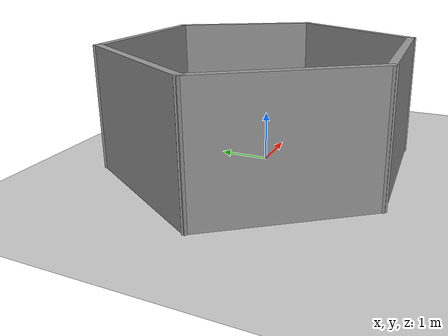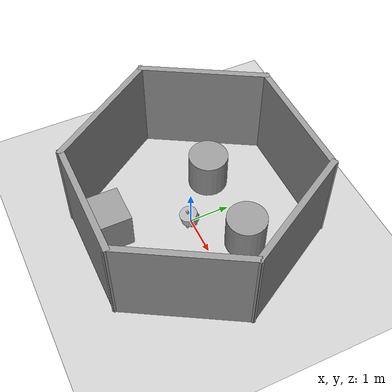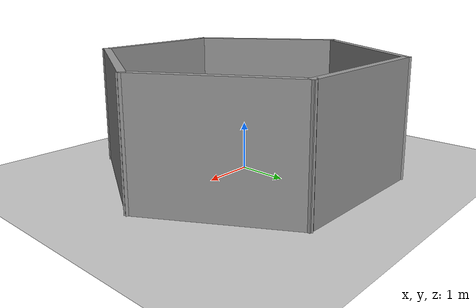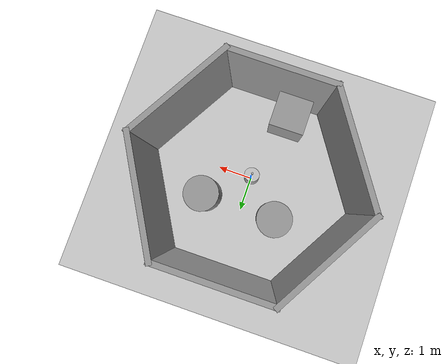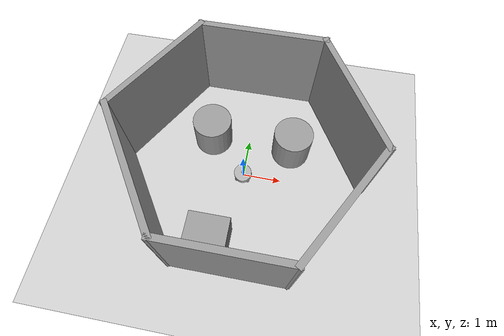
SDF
<sdf version="1.7">
 <world name="default">
  <light name="sun" type="directional">
   <pose>0 0 10 0 -0 0</pose>
   <diffuse>0.8 0.8 0.8 1</diffuse>
   <specular>0.2 0.2 0.2 1</specular>
   <attenuation>
    <range>1000</range>
    <constant>0.9</constant>
    <linear>0.01</linear>
    <quadratic>0.001</quadratic>
   </attenuation>
   <direction>-0.5 0.1 -0.9</direction>
   <spot><inner_angle>0</inner_angle><outer_angle>0</outer_angle><falloff>0</falloff></spot>
  </light>
  <model name="ground_plane">
   <static>1</static>
   <link name="link">
    <collision name="collision">
     <geometry><plane><normal>0 0 1</normal><size>100 100</size></plane></geometry>
     <surface>
      <contact><collide_bitmask>65535</collide_bitmask></contact>
      <friction><ode><mu>100</mu><mu2>50</mu2></ode></friction>
     </surface>
    </collision>
    <visual name="visual">
     <cast_shadows>0</cast_shadows>
     <geometry><plane><normal>0 0 1</normal><size>100 100</size></plane></geometry>
     <material>
      <script><uri>file://media/materials/scripts/gazebo.material</uri><name>Gazebo/Grey</name></script>
     </material>
    </visual>
   </link>
  </model>
  <gravity>0 0 -9.8</gravity>
  <magnetic_field>6e-06 2.3e-05 -4.2e-05</magnetic_field>
  <atmosphere type="adiabatic"/>
  <physics type="ode">
   <max_step_size>0.001</max_step_size>
   <real_time_factor>1</real_time_factor>
   <real_time_update_rate>1000</real_time_update_rate>
  </physics>
  <scene><ambient>0.4 0.4 0.4 1</ambient><background>0.7 0.7 0.7 1</background><shadows>1</shadows></scene>
  <spherical_coordinates>
   <surface_model>EARTH_WGS84</surface_model>
   <latitude_deg>0</latitude_deg>
   <longitude_deg>0</longitude_deg>
   <elevation>0</elevation>
   <heading_deg>0</heading_deg>
  </spherical_coordinates>
  <model name="world1">
   <pose>-0.03173 0.09129 0 0 -0 0</pose>
   <link name="Wall_47">
    <collision name="Wall_47_Collision">
     <geometry><box><size>3.25 0.15 2.5</size></box></geometry>
     <pose>0 0 1.25 0 -0 0</pose>
    </collision>
    <visual name="Wall_47_Visual">
     <pose>0 0 1.25 0 -0 0</pose>
     <geometry><box><size>3.25 0.15 2.5</size></box></geometry>
     <material>
      <script><uri>file://media/materials/scripts/gazebo.material</uri><name>Gazebo/Grey</name></script>
      <ambient>1 1 1 1</ambient>
     </material>
     <meta><layer>0</layer></meta>
    </visual>
    <pose>-2.3242 1.34314 0 0 -0 1.0472</pose>
   </link>
   <link name="Wall_48">
    <collision name="Wall_48_Collision">
     <geometry><box><size>3.25 0.15 2.5</size></box></geometry>
     <pose>0 0 1.25 0 -0 0</pose>
    </collision>
    <visual name="Wall_48_Visual">
     <pose>0 0 1.25 0 -0 0</pose>
     <geometry><box><size>3.25 0.15 2.5</size></box></geometry>
     <material>
      <script><uri>file://media/materials/scripts/gazebo.material</uri><name>Gazebo/Grey</name></script>
      <ambient>1 1 1 1</ambient>
     </material>
     <meta><layer>0</layer></meta>
    </visual>
    <pose>0.000804 2.68548 0 0 -0 0</pose>
   </link>
   <link name="Wall_49">
    <collision name="Wall_49_Collision">
     <geometry><box><size>3.25 0.15 2.5</size></box></geometry>
     <pose>0 0 1.25 0 -0 0</pose>
    </collision>
    <visual name="Wall_49_Visual">
     <pose>0 0 1.25 0 -0 0</pose>
     <geometry><box><size>3.25 0.15 2.5</size></box></geometry>
     <material>
      <script><uri>file://media/materials/scripts/gazebo.material</uri><name>Gazebo/Grey</name></script>
      <ambient>1 1 1 1</ambient>
     </material>
     <meta><layer>0</layer></meta>
    </visual>
    <pose>2.3258 1.34314 0 0 -0 -1.0472</pose>
   </link>
   <link name="Wall_50">
    <collision name="Wall_50_Collision">
     <geometry><box><size>3.25 0.15 2.5</size></box></geometry>
     <pose>0 0 1.25 0 -0 0</pose>
    </collision>
    <visual name="Wall_50_Visual">
     <pose>0 0 1.25 0 -0 0</pose>
     <geometry><box><size>3.25 0.15 2.5</size></box></geometry>
     <material>
      <script><uri>file://media/materials/scripts/gazebo.material</uri><name>Gazebo/Grey</name></script>
      <ambient>1 1 1 1</ambient>
     </material>
     <meta><layer>0</layer></meta>
    </visual>
    <pose>2.3258 -1.34153 0 0 -0 -2.0944</pose>
   </link>
   <link name="Wall_51">
    <collision name="Wall_51_Collision">
     <geometry><box><size>3 0.15 2.5</size></box></geometry>
     <pose>0 0 1.25 0 -0 0</pose>
    </collision>
    <visual name="Wall_51_Visual">
     <pose>0 0 1.25 0 -0 0</pose>
     <geometry><box><size>3 0.15 2.5</size></box></geometry>
     <material>
      <script><uri>file://media/materials/scripts/gazebo.material</uri><name>Gazebo/Grey</name></script>
      <ambient>1 1 1 1</ambient>
     </material>
     <meta><layer>0</layer></meta>
    </visual>
    <pose>0.125804 -2.68387 0 0 -0 3.14159</pose>
   </link>
   <link name="Wall_52">
    <collision name="Wall_52_Collision">
     <geometry><box><size>3.38226 0.15 2.5</size></box></geometry>
     <pose>0 0 1.25 0 -0 0</pose>
    </collision>
    <visual name="Wall_52_Visual">
     <pose>0 0 1.25 0 -0 0</pose>
     <geometry><box><size>3.38226 0.15 2.5</size></box></geometry>
     <material>
      <script><uri>file://media/materials/scripts/gazebo.material</uri><name>Gazebo/Grey</name></script>
      <ambient>1 1 1 1</ambient>
     </material>
     <meta><layer>0</layer></meta>
    </visual>
    <pose>-2.1992 -1.34153 0 0 -0 2.16143</pose>
   </link>
   <static>1</static>
  </model>
  <model name="unit_cylinder">
   <pose>-0.995623 0.944448 0.499992 -3e-06 4e-06 0</pose>
   <link name="link">
    <inertial>
     <mass>1</mass>
     <inertia><ixx>0.145833</ixx><ixy>0</ixy><ixz>0</ixz><iyy>0.145833</iyy><iyz>0</iyz><izz>0.125</izz></inertia>
    </inertial>
    <collision name="collision">
     <geometry><cylinder><radius>0.5</radius><length>1</length></cylinder></geometry>
    </collision>
    <visual name="visual">
     <geometry><cylinder><radius>0.5</radius><length>1</length></cylinder></geometry>
     <material>
      <script><name>Gazebo/Grey</name><uri>file://media/materials/scripts/gazebo.material</uri></script>
     </material>
    </visual>
   </link>
  </model>
  <model name="unit_cylinder_0">
   <pose>1.14305 0.920895 0.499998 3e-06 -4e-06 0</pose>
   <link name="link">
    <inertial>
     <mass>1</mass>
     <inertia><ixx>0.145833</ixx><ixy>0</ixy><ixz>0</ixz><iyy>0.145833</iyy><iyz>0</iyz><izz>0.125</izz></inertia>
    </inertial>
    <collision name="collision">
     <geometry><cylinder><radius>0.5</radius><length>1</length></cylinder></geometry>
    </collision>
    <visual name="visual">
     <geometry><cylinder><radius>0.5</radius><length>1</length></cylinder></geometry>
     <material>
      <script><name>Gazebo/Grey</name><uri>file://media/materials/scripts/gazebo.material</uri></script>
     </material>
    </visual>
   </link>
  </model>
  <model name="unit_box">
   <pose>-0.503172 -2.01759 0.499995 1e-05 -0 -5e-06</pose>
   <link name="link">
    <inertial>
     <mass>1</mass>
     <inertia>
      <ixx>0.166667</ixx>
      <ixy>0</ixy>
      <ixz>0</ixz>
      <iyy>0.166667</iyy>
      <iyz>0</iyz>
      <izz>0.166667</izz>
     </inertia>
    </inertial>
    <collision name="collision"><geometry><box><size>1 1 1</size></box></geometry></collision>
    <visual name="visual">
     <geometry><box><size>1 1 1</size></box></geometry>
     <material>
      <script><name>Gazebo/Grey</name><uri>file://media/materials/scripts/gazebo.material</uri></script>
     </material>
    </visual>
   </link>
  </model>
  <audio><device>default</device></audio>
  <model name="fishbot">
   <link name="base_footprint">
    <inertial>
     <pose>0 -0.0038 0.066 0 -0 0</pose>
     <mass>1.25</mass>
     <inertia>
      <ixx>0.111883</ixx>
      <ixy>-3.29597e-21</ixy>
      <ixz>-8.67362e-21</ixz>
      <iyy>0.1098</iyy>
      <iyz>-0.000665</iyz>
      <izz>0.108883</izz>
     </inertia>
    </inertial>
    <collision name="base_footprint_fixed_joint_lump__base_link_collision">
     <pose>0 0 0.076 0 -0 0</pose>
     <geometry><cylinder><length>0.25</length><radius>0.225</radius></cylinder></geometry>
    </collision>
    <collision name="base_footprint_fixed_joint_lump__caster1_link_collision_1">
     <pose>-0.15 -0.15 -0.074 1.57079 -0 0</pose>
     <geometry><sphere><radius>0.04</radius></sphere></geometry>
    </collision>
    <collision name="base_footprint_fixed_joint_lump__caster2_link_collision_2">
     <pose>0.15 -0.15 -0.074 1.57079 -0 0</pose>
     <geometry><sphere><radius>0.04</radius></sphere></geometry>
    </collision>
    <collision name="base_footprint_fixed_joint_lump__caster3_link_collision_3">
     <pose>0 0.205 -0.074 1.57079 -0 0</pose>
     <geometry><sphere><radius>0.04</radius></sphere></geometry>
    </collision>
    <collision name="base_footprint_fixed_joint_lump__imu_link_collision_4">
     <pose>0 0 0.076 0 -0 0</pose>
     <geometry><box><size>0.04 0.04 0.02</size></box></geometry>
    </collision>
    <collision name="base_footprint_fixed_joint_lump__laser_link_collision_5">
     <pose>0 0 0.276 0 -0 0</pose>
     <geometry><cylinder><length>0.09</length><radius>0.03</radius></cylinder></geometry>
    </collision>
    <visual name="base_footprint_fixed_joint_lump__base_link_visual">
     <pose>0 0 0.076 0 -0 0</pose>
     <geometry><cylinder><length>0.25</length><radius>0.225</radius></cylinder></geometry>
    </visual>
    <visual name="base_footprint_fixed_joint_lump__caster1_link_visual_1">
     <pose>-0.15 -0.15 -0.074 1.57079 -0 0</pose>
     <geometry><sphere><radius>0.04</radius></sphere></geometry>
    </visual>
    <visual name="base_footprint_fixed_joint_lump__caster2_link_visual_2">
     <pose>0.15 -0.15 -0.074 1.57079 -0 0</pose>
     <geometry><sphere><radius>0.04</radius></sphere></geometry>
    </visual>
    <visual name="base_footprint_fixed_joint_lump__caster3_link_visual_3">
     <pose>0 0.205 -0.074 1.57079 -0 0</pose>
     <geometry><sphere><radius>0.04</radius></sphere></geometry>
    </visual>
    <visual name="base_footprint_fixed_joint_lump__imu_link_visual_4">
     <pose>0 0 0.076 0 -0 0</pose>
     <geometry><box><size>0.04 0.04 0.02</size></box></geometry>
    </visual>
    <visual name="base_footprint_fixed_joint_lump__laser_link_visual_5">
     <pose>0 0 0.276 0 -0 0</pose>
     <geometry><cylinder><length>0.09</length><radius>0.03</radius></cylinder></geometry>
    </visual>
    <sensor name="imu_sensor" type="imu">
     <plugin name="imu_plugin" filename="libgazebo_ros_imu_sensor.so">
      <ros><namespace>/</namespace><remapping>~/out:=imu</remapping></ros>
      <initial_orientation_as_reference>0</initial_orientation_as_reference>
     </plugin>
     <always_on>1</always_on>
     <update_rate>100</update_rate>
     <visualize>1</visualize>
     <imu>
      <angular_velocity>
       <x>
        <noise type="gaussian">
         <mean>0</mean>
         <stddev>0.0002</stddev>
         <bias_mean>7.5e-06</bias_mean>
         <bias_stddev>8e-07</bias_stddev>
        </noise>
       </x>
       <y>
        <noise type="gaussian">
         <mean>0</mean>
         <stddev>0.0002</stddev>
         <bias_mean>7.5e-06</bias_mean>
         <bias_stddev>8e-07</bias_stddev>
        </noise>
       </y>
       <z>
        <noise type="gaussian">
         <mean>0</mean>
         <stddev>0.0002</stddev>
         <bias_mean>7.5e-06</bias_mean>
         <bias_stddev>8e-07</bias_stddev>
        </noise>
       </z>
      </angular_velocity>
      <linear_acceleration>
       <x>
        <noise type="gaussian">
         <mean>0</mean>
         <stddev>0.017</stddev>
         <bias_mean>0.1</bias_mean>
         <bias_stddev>0.001</bias_stddev>
        </noise>
       </x>
       <y>
        <noise type="gaussian">
         <mean>0</mean>
         <stddev>0.017</stddev>
         <bias_mean>0.1</bias_mean>
         <bias_stddev>0.001</bias_stddev>
        </noise>
       </y>
       <z>
        <noise type="gaussian">
         <mean>0</mean>
         <stddev>0.017</stddev>
         <bias_mean>0.1</bias_mean>
         <bias_stddev>0.001</bias_stddev>
        </noise>
       </z>
      </linear_acceleration>
     </imu>
     <pose>0 0 0.076 0 -0 0</pose>
    </sensor>
    <sensor name="laser_sensor" type="ray">
     <always_on>1</always_on>
     <visualize>1</visualize>
     <update_rate>10</update_rate>
     <ray>
      <scan>
       <horizontal>
        <samples>360</samples>
        <resolution>1</resolution>
        <min_angle>0</min_angle>
        <max_angle>6.28</max_angle>
       </horizontal>
       <vertical><samples>1</samples><min_angle>0</min_angle><max_angle>0</max_angle></vertical>
      </scan>
      <range><min>0.12</min><max>3.5</max><resolution>0.015</resolution></range>
      <noise><type>gaussian</type><mean>0</mean><stddev>0.01</stddev></noise>
     </ray>
     <plugin name="laserscan" filename="libgazebo_ros_ray_sensor.so">
      <ros><remapping>~/out:=scan</remapping></ros>
      <output_type>sensor_msgs/LaserScan</output_type>
      <frame_name>laser_link</frame_name>
     </plugin>
     <pose>0 0 0.276 0 -0 0</pose>
    </sensor>
   </link>
   <joint name="left_wheel_joint" type="revolute">
    <pose relative_to="base_footprint">-0.1775 0 -0.059 0 -0 0</pose>
    <parent>base_footprint</parent>
    <child>left_wheel_link</child>
    <axis>
     <xyz>1 0 0</xyz>
     <limit><lower>-1e+16</lower><upper>1e+16</upper></limit>
     <dynamics><spring_reference>0</spring_reference><spring_stiffness>0</spring_stiffness></dynamics>
    </axis>
   </joint>
   <link name="left_wheel_link">
    <pose relative_to="left_wheel_joint">0 0 0 0 -0 0</pose>
    <inertial>
     <mass>0.2</mass>
     <inertia><ixx>0.0005</ixx><ixy>0</ixy><ixz>0</ixz><iyy>0.0005</iyy><iyz>0</iyz><izz>0.001</izz></inertia>
    </inertial>
    <collision name="left_wheel_link_collision">
     <pose>0 0 0 3.14159 1.57079 3.14159</pose>
     <geometry><cylinder><length>0.05</length><radius>0.09</radius></cylinder></geometry>
    </collision>
    <visual name="left_wheel_link_visual">
     <pose>0 0 0 3.14159 1.57079 3.14159</pose>
     <geometry><cylinder><length>0.05</length><radius>0.09</radius></cylinder></geometry>
    </visual>
   </link>
   <joint name="right_wheel_joint" type="revolute">
    <pose relative_to="base_footprint">0.1775 0 -0.059 0 -0 0</pose>
    <parent>base_footprint</parent>
    <child>right_wheel_link</child>
    <axis>
     <xyz>1 0 0</xyz>
     <limit><lower>-1e+16</lower><upper>1e+16</upper></limit>
     <dynamics><spring_reference>0</spring_reference><spring_stiffness>0</spring_stiffness></dynamics>
    </axis>
   </joint>
   <link name="right_wheel_link">
    <pose relative_to="right_wheel_joint">0 0 0 0 -0 0</pose>
    <inertial>
     <mass>0.2</mass>
     <inertia><ixx>0.0005</ixx><ixy>0</ixy><ixz>0</ixz><iyy>0.0005</iyy><iyz>0</iyz><izz>0.001</izz></inertia>
    </inertial>
    <collision name="right_wheel_link_collision">
     <pose>0 0 0 3.14159 1.57079 3.14159</pose>
     <geometry><cylinder><length>0.05</length><radius>0.09</radius></cylinder></geometry>
    </collision>
    <visual name="right_wheel_link_visual">
     <pose>0 0 0 3.14159 1.57079 3.14159</pose>
     <geometry><cylinder><length>0.05</length><radius>0.09</radius></cylinder></geometry>
    </visual>
   </link>
   <static>0</static>
   <plugin name="diff_drive" filename="libgazebo_ros_diff_drive.so">
    <ros><namespace>/</namespace><remapping>cmd_vel:=cmd_vel</remapping><remapping>odom:=odom</remapping></ros>
    <update_rate>30</update_rate>
    <left_joint>left_wheel_joint</left_joint>
    <right_joint>right_wheel_joint</right_joint>
    <wheel_separation>0.2</wheel_separation>
    <wheel_diameter>0.18</wheel_diameter>
    <max_wheel_torque>20</max_wheel_torque>
    <max_wheel_acceleration>1.0</max_wheel_acceleration>
    <publish_odom>1</publish_odom>
    <publish_odom_tf>1</publish_odom_tf>
    <publish_wheel_tf>1</publish_wheel_tf>
    <odometry_frame>odom</odometry_frame>
    <robot_base_frame>base_footprint</robot_base_frame>
   </plugin>
   <pose>0.00137 -0.032159 0.147331 0.238411 -2e-06 0.001845</pose>
  </model>
 </world>
</sdf>
